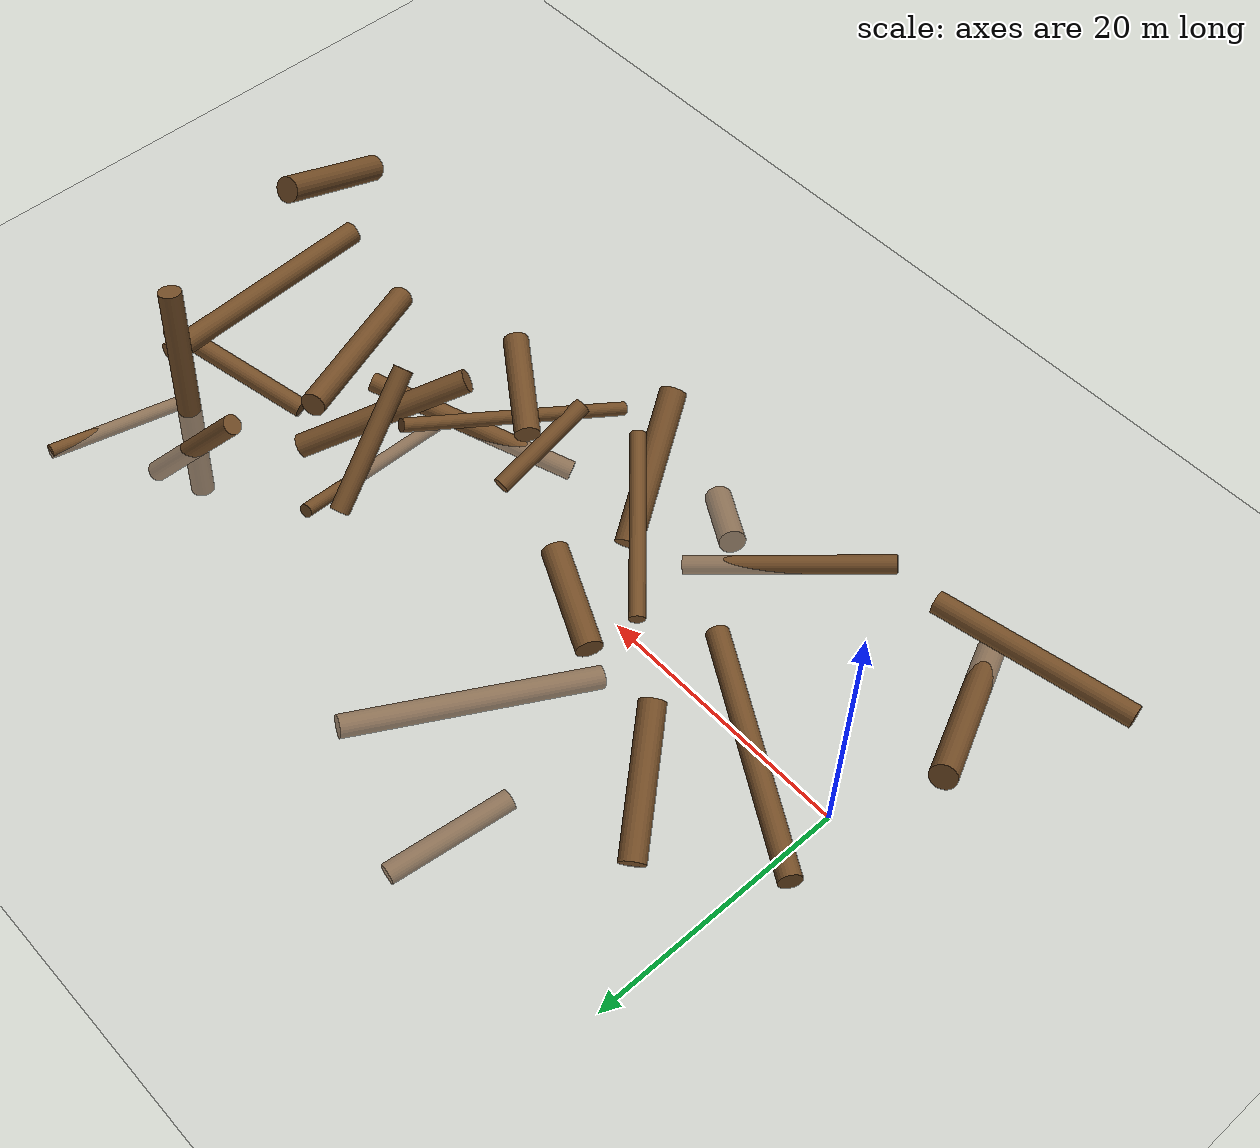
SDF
<sdf version='1.7'>
            <world name='default'>
                <light name='sun' type='directional'>
                <cast_shadows>1</cast_shadows>
                <pose>0 0 10 0 -0 0</pose>
                <diffuse>0.8 0.8 0.8 1</diffuse>
                <specular>0.2 0.2 0.2 1</specular>
                <attenuation>
                    <range>1000</range>
                    <constant>0.9</constant>
                    <linear>0.01</linear>
                    <quadratic>0.001</quadratic>
                </attenuation>
                <direction>-0.5 0.1 -0.9</direction>
                <spot>
                    <inner_angle>0</inner_angle>
                    <outer_angle>0</outer_angle>
                    <falloff>0</falloff>
                </spot>
                </light>
                <model name='ground_plane'>
                <static>1</static>
                <link name='link'>
                    <collision name='collision'>
                    <geometry>
                        <plane>
                        <normal>0 0 1</normal>
                        <size>100 100</size>
                        </plane>
                    </geometry>
                    <surface>
                        <contact>
                        <collide_bitmask>65535</collide_bitmask>
                        <ode/>
                        </contact>
                        <friction>
                        <ode>
                            <mu>100</mu>
                            <mu2>50</mu2>
                        </ode>
                        <torsional>
                            <ode/>
                        </torsional>
                        </friction>
                        <bounce/>
                    </surface>
                    <max_contacts>10</max_contacts>
                    </collision>
                    <visual name='visual'>
                    <cast_shadows>0</cast_shadows>
                    <geometry>
                        <plane>
                        <normal>0 0 1</normal>
                        <size>100 100</size>
                        </plane>
                    </geometry>
                    <material>
                        <script>
                        <uri>file://media/materials/scripts/gazebo.material</uri>
                        <name>Gazebo/Grey</name>
                        </script>
                    </material>
                    </visual>
                    <self_collide>0</self_collide>
                    <enable_wind>0</enable_wind>
                    <kinematic>0</kinematic>
                </link>
                </model>
                <gravity>0 0 -9.8</gravity>
                <magnetic_field>6e-06 2.3e-05 -4.2e-05</magnetic_field>
                <atmosphere type='adiabatic'/>
                <physics type='ode'>
                <max_step_size>0.001</max_step_size>
                <real_time_factor>1</real_time_factor>
                <real_time_update_rate>1000</real_time_update_rate>
                </physics>
                <scene>
                <ambient>0.4 0.4 0.4 1</ambient>
                <background>0.7 0.7 0.7 1</background>
                <shadows>1</shadows>
                </scene>
                <wind/>
                <spherical_coordinates>
                <surface_model>EARTH_WGS84</surface_model>
                <latitude_deg>0</latitude_deg>
                <longitude_deg>0</longitude_deg>
                <elevation>0</elevation>
                <heading_deg>0</heading_deg>
                </spherical_coordinates>
                <model name='cylinder_1'>
      <static>1</static>
      <link name='link'>
        <pose frame=''>0 0 0.1 0 -0 0</pose>
        <collision name='collision_trunk'>
          <pose frame=''>0 0 2 0 -0 0</pose>
          <geometry>
            <cylinder>
              <radius>0.9949792097028908</radius>
              <length>11.641683740963664</length>
            </cylinder>
          </geometry>
        </collision>
        <visual name='trunk'>
          <pose frame=''>0 0 2 0 -0 0</pose>
          <geometry>
            <cylinder>
              <radius>0.9949792097028908</radius>
              <length>11.641683740963664</length>
            </cylinder>
          </geometry>
          <material>
            <script>
              <uri>model://tree_simple/scripts</uri>
              <uri>model://tree_simple/materials/textures</uri>
              <name>TreeSimple/Trunk</name>
            </script>
          </material>
        </visual>
        <self_collide>0</self_collide>
        <kinematic>0</kinematic>
      </link>
      <pose frame=''>25.604518766579545 -7.498273661027049 2.893977495658426 30.2956192504788 68.5857228035242 72.54887266500606</pose>
    </model>
    <model name='cylinder_2'>
      <static>1</static>
      <link name='link'>
        <pose frame=''>0 0 0.1 0 -0 0</pose>
        <collision name='collision_trunk'>
          <pose frame=''>0 0 2 0 -0 0</pose>
          <geometry>
            <cylinder>
              <radius>0.9539094253623406</radius>
          <length>10.5698242177709</length>
            </cylinder>
          </geometry>
        </collision>
        <visual name='trunk'>
          <pose frame=''>0 0 2 0 -0 0</pose>
          <geometry>
            <cylinder>
              <radius>0.9539094253623406</radius>
          <length>10.5698242177709</length>
            </cylinder>
          </geometry>
          <material>
            <script>
              <uri>model://tree_simple/scripts</uri>
              <uri>model://tree_simple/materials/textures</uri>
              <name>TreeSimple/Trunk</name>
            </script>
          </material>
        </visual>
        <self_collide>0</self_collide>
        <kinematic>0</kinematic>
      </link>
      <pose frame=''>10.272900749555058 6.532500951908805 2.924238259122739 82.21227137330179 96.19448430527324 147.34591994827414</pose>
    </model>
    <model name='cylinder_3'>
      <static>1</static>
      <link name='link'>
        <pose frame=''>0 0 0.1 0 -0 0</pose>
        <collision name='collision_trunk'>
          <pose frame=''>0 0 2 0 -0 0</pose>
          <geometry>
            <cylinder>
              <radius>0.5022780386079325</radius>
          <length>18.14040667349965</length>
            </cylinder>
          </geometry>
        </collision>
        <visual name='trunk'>
          <pose frame=''>0 0 2 0 -0 0</pose>
          <geometry>
            <cylinder>
              <radius>0.5022780386079325</radius>
          <length>18.14040667349965</length>
            </cylinder>
          </geometry>
          <material>
            <script>
              <uri>model://tree_simple/scripts</uri>
              <uri>model://tree_simple/materials/textures</uri>
              <name>TreeSimple/Trunk</name>
            </script>
          </material>
        </visual>
        <self_collide>0</self_collide>
        <kinematic>0</kinematic>
      </link>
      <pose frame=''>36.183250200149345 -2.5495471554033458 5.756408641529976 62.16976166163011 115.11869376302371 35.10348327532475</pose>
    </model>
    <model name='cylinder_4'>
      <static>1</static>
      <link name='link'>
        <pose frame=''>0 0 0.1 0 -0 0</pose>
        <collision name='collision_trunk'>
          <pose frame=''>0 0 2 0 -0 0</pose>
          <geometry>
            <cylinder>
              <radius>0.5236101621346088</radius>
          <length>11.746474007422552</length>
            </cylinder>
          </geometry>
        </collision>
        <visual name='trunk'>
          <pose frame=''>0 0 2 0 -0 0</pose>
          <geometry>
            <cylinder>
              <radius>0.5236101621346088</radius>
          <length>11.746474007422552</length>
            </cylinder>
          </geometry>
          <material>
            <script>
              <uri>model://tree_simple/scripts</uri>
              <uri>model://tree_simple/materials/textures</uri>
              <name>TreeSimple/Trunk</name>
            </script>
          </material>
        </visual>
        <self_collide>0</self_collide>
        <kinematic>0</kinematic>
      </link>
      <pose frame=''>58.216129131185745 12.595107076086904 -1.1766883544689963 24.108655793565475 136.92886052222633 106.16761396367312</pose>
    </model>
    <model name='cylinder_5'>
      <static>1</static>
      <link name='link'>
        <pose frame=''>0 0 0.1 0 -0 0</pose>
        <collision name='collision_trunk'>
          <pose frame=''>0 0 2 0 -0 0</pose>
          <geometry>
            <cylinder>
              <radius>0.8424578188629119</radius>
          <length>15.052224311252628</length>
            </cylinder>
          </geometry>
        </collision>
        <visual name='trunk'>
          <pose frame=''>0 0 2 0 -0 0</pose>
          <geometry>
            <cylinder>
              <radius>0.8424578188629119</radius>
          <length>15.052224311252628</length>
            </cylinder>
          </geometry>
          <material>
            <script>
              <uri>model://tree_simple/scripts</uri>
              <uri>model://tree_simple/materials/textures</uri>
              <name>TreeSimple/Trunk</name>
            </script>
          </material>
        </visual>
        <self_collide>0</self_collide>
        <kinematic>0</kinematic>
      </link>
      <pose frame=''>0.6960789155220137 -17.599431248844244 1.9445413994926373 67.4998745479427 101.25631236823692 102.28123066990736</pose>
    </model>
    <model name='cylinder_6'>
      <static>1</static>
      <link name='link'>
        <pose frame=''>0 0 0.1 0 -0 0</pose>
        <collision name='collision_trunk'>
          <pose frame=''>0 0 2 0 -0 0</pose>
          <geometry>
            <cylinder>
              <radius>0.7655793297948693</radius>
          <length>9.626367270660639</length>
            </cylinder>
          </geometry>
        </collision>
        <visual name='trunk'>
          <pose frame=''>0 0 2 0 -0 0</pose>
          <geometry>
            <cylinder>
              <radius>0.7655793297948693</radius>
          <length>9.626367270660639</length>
            </cylinder>
          </geometry>
          <material>
            <script>
              <uri>model://tree_simple/scripts</uri>
              <uri>model://tree_simple/materials/textures</uri>
              <name>TreeSimple/Trunk</name>
            </script>
          </material>
        </visual>
        <self_collide>0</self_collide>
        <kinematic>0</kinematic>
      </link>
      <pose frame=''>17.647502752337857 19.589020362112407 -4.907838889347914 58.65824117107358 165.0621456649798 107.20414637798673</pose>
    </model>
    <model name='cylinder_7'>
      <static>1</static>
      <link name='link'>
        <pose frame=''>0 0 0.1 0 -0 0</pose>
        <collision name='collision_trunk'>
          <pose frame=''>0 0 2 0 -0 0</pose>
          <geometry>
            <cylinder>
              <radius>0.9973744936564692</radius>
          <length>5.285625468977769</length>
            </cylinder>
          </geometry>
        </collision>
        <visual name='trunk'>
          <pose frame=''>0 0 2 0 -0 0</pose>
          <geometry>
            <cylinder>
              <radius>0.9973744936564692</radius>
          <length>5.285625468977769</length>
            </cylinder>
          </geometry>
          <material>
            <script>
              <uri>model://tree_simple/scripts</uri>
              <uri>model://tree_simple/materials/textures</uri>
              <name>TreeSimple/Trunk</name>
            </script>
          </material>
        </visual>
        <self_collide>0</self_collide>
        <kinematic>0</kinematic>
      </link>
      <pose frame=''>24.95278465674628 -14.947580019691461 -3.5176148444413737 123.57292166760996 146.55554943919105 69.62632358346046</pose>
    </model>
    <model name='cylinder_8'>
      <static>1</static>
      <link name='link'>
        <pose frame=''>0 0 0.1 0 -0 0</pose>
        <collision name='collision_trunk'>
          <pose frame=''>0 0 2 0 -0 0</pose>
          <geometry>
            <cylinder>
              <radius>0.9807413372204243</radius>
          <length>10.289356327006619</length>
            </cylinder>
          </geometry>
        </collision>
        <visual name='trunk'>
          <pose frame=''>0 0 2 0 -0 0</pose>
          <geometry>
            <cylinder>
              <radius>0.9807413372204243</radius>
          <length>10.289356327006619</length>
            </cylinder>
          </geometry>
          <material>
            <script>
              <uri>model://tree_simple/scripts</uri>
              <uri>model://tree_simple/materials/textures</uri>
              <name>TreeSimple/Trunk</name>
            </script>
          </material>
        </visual>
        <self_collide>0</self_collide>
        <kinematic>0</kinematic>
      </link>
      <pose frame=''>59.830866118157935 -8.739225879501857 8.80374781005478 9.927949596230834 129.84193420851003 170.84769927519864</pose>
    </model>
    <model name='cylinder_9'>
      <static>1</static>
      <link name='link'>
        <pose frame=''>0 0 0.1 0 -0 0</pose>
        <collision name='collision_trunk'>
          <pose frame=''>0 0 2 0 -0 0</pose>
          <geometry>
            <cylinder>
              <radius>0.8385290083985348</radius>
          <length>19.325744821213682</length>
            </cylinder>
          </geometry>
        </collision>
        <visual name='trunk'>
          <pose frame=''>0 0 2 0 -0 0</pose>
          <geometry>
            <cylinder>
              <radius>0.8385290083985348</radius>
          <length>19.325744821213682</length>
            </cylinder>
          </geometry>
          <material>
            <script>
              <uri>model://tree_simple/scripts</uri>
              <uri>model://tree_simple/materials/textures</uri>
              <name>TreeSimple/Trunk</name>
            </script>
          </material>
        </visual>
        <self_collide>0</self_collide>
        <kinematic>0</kinematic>
      </link>
      <pose frame=''>4.4559663410579216 1.9202602952986005 1.4069158623178515 17.25027301192005 63.31714565500593 23.007982231054214</pose>
    </model>
    <model name='cylinder_10'>
      <static>1</static>
      <link name='link'>
        <pose frame=''>0 0 0.1 0 -0 0</pose>
        <collision name='collision_trunk'>
          <pose frame=''>0 0 2 0 -0 0</pose>
          <geometry>
            <cylinder>
              <radius>0.7387145634336486</radius>
          <length>10.891351465770423</length>
            </cylinder>
          </geometry>
        </collision>
        <visual name='trunk'>
          <pose frame=''>0 0 2 0 -0 0</pose>
          <geometry>
            <cylinder>
              <radius>0.7387145634336486</radius>
          <length>10.891351465770423</length>
            </cylinder>
          </geometry>
          <material>
            <script>
              <uri>model://tree_simple/scripts</uri>
              <uri>model://tree_simple/materials/textures</uri>
              <name>TreeSimple/Trunk</name>
            </script>
          </material>
        </visual>
        <self_collide>0</self_collide>
        <kinematic>0</kinematic>
      </link>
      <pose frame=''>40.47481374896363 3.4618519466969353 7.314728446472174 169.2776127866053 60.57037580341769 175.124938483209</pose>
    </model>
    <model name='cylinder_11'>
      <static>1</static>
      <link name='link'>
        <pose frame=''>0 0 0.1 0 -0 0</pose>
        <collision name='collision_trunk'>
          <pose frame=''>0 0 2 0 -0 0</pose>
          <geometry>
            <cylinder>
              <radius>0.8499053721328556</radius>
          <length>19.178535854425615</length>
            </cylinder>
          </geometry>
        </collision>
        <visual name='trunk'>
          <pose frame=''>0 0 2 0 -0 0</pose>
          <geometry>
            <cylinder>
              <radius>0.8499053721328556</radius>
          <length>19.178535854425615</length>
            </cylinder>
          </geometry>
          <material>
            <script>
              <uri>model://tree_simple/scripts</uri>
              <uri>model://tree_simple/materials/textures</uri>
              <name>TreeSimple/Trunk</name>
            </script>
          </material>
        </visual>
        <self_collide>0</self_collide>
        <kinematic>0</kinematic>
      </link>
      <pose frame=''>23.457970700320377 7.699073949994649 -4.866771016510322 98.5240585335588 27.037769562071155 105.97900386720261</pose>
    </model>
        <model name='cylinder_12'>
      <static>1</static>
      <link name='link'>
        <pose frame=''>0 0 0.1 0 -0 0</pose>
        <collision name='collision_trunk'>
          <pose frame=''>0 0 2 0 -0 0</pose>
          <geometry>
            <cylinder>
              <radius>0.8651113946939074</radius>
          <length>13.382723422348294</length>
            </cylinder>
          </geometry>
        </collision>
        <visual name='trunk'>
          <pose frame=''>0 0 2 0 -0 0</pose>
          <geometry>
            <cylinder>
              <radius>0.8651113946939074</radius>
          <length>13.382723422348294</length>
            </cylinder>
          </geometry>
          <material>
            <script>
              <uri>model://tree_simple/scripts</uri>
              <uri>model://tree_simple/materials/textures</uri>
              <name>TreeSimple/Trunk</name>
            </script>
          </material>
        </visual>
        <self_collide>0</self_collide>
        <kinematic>0</kinematic>
      </link>
      <pose frame=''>43.034506147620334 4.117093309072114 4.395978260383357 155.02995504193802 40.370179531376166 159.37385026734538</pose>
    </model>
    <model name='cylinder_13'>
      <static>1</static>
      <link name='link'>
        <pose frame=''>0 0 0.1 0 -0 0</pose>
        <collision name='collision_trunk'>
          <pose frame=''>0 0 2 0 -0 0</pose>
          <geometry>
            <cylinder>
              <radius>0.9143744878599476</radius>
          <length>14.051447253055754</length>
            </cylinder>
          </geometry>
        </collision>
        <visual name='trunk'>
          <pose frame=''>0 0 2 0 -0 0</pose>
          <geometry>
            <cylinder>
              <radius>0.9143744878599476</radius>
          <length>14.051447253055754</length>
            </cylinder>
          </geometry>
          <material>
            <script>
              <uri>model://tree_simple/scripts</uri>
              <uri>model://tree_simple/materials/textures</uri>
              <name>TreeSimple/Trunk</name>
            </script>
          </material>
        </visual>
        <self_collide>0</self_collide>
        <kinematic>0</kinematic>
      </link>
      <pose frame=''>47.25238226852442 -0.7895319857128555 6.909430774225193 121.989646619501 14.355901155151958 111.43262764385646</pose>
    </model>
    <model name='cylinder_14'>
      <static>1</static>
      <link name='link'>
        <pose frame=''>0 0 0.1 0 -0 0</pose>
        <collision name='collision_trunk'>
          <pose frame=''>0 0 2 0 -0 0</pose>
          <geometry>
            <cylinder>
              <radius>0.6703522302110756</radius>
          <length>15.036196823692865</length>
            </cylinder>
          </geometry>
        </collision>
        <visual name='trunk'>
          <pose frame=''>0 0 2 0 -0 0</pose>
          <geometry>
            <cylinder>
              <radius>0.6703522302110756</radius>
          <length>15.036196823692865</length>
            </cylinder>
          </geometry>
          <material>
            <script>
              <uri>model://tree_simple/scripts</uri>
              <uri>model://tree_simple/materials/textures</uri>
              <name>TreeSimple/Trunk</name>
            </script>
          </material>
        </visual>
        <self_collide>0</self_collide>
        <kinematic>0</kinematic>
      </link>
      <pose frame=''>14.241259097417904 -13.856084765308214 0.4223472266636854 10.815514411890693 132.1723808972628 87.06756612023233</pose>
    </model>
    <model name='cylinder_15'>
      <static>1</static>
      <link name='link'>
        <pose frame=''>0 0 0.1 0 -0 0</pose>
        <collision name='collision_trunk'>
          <pose frame=''>0 0 2 0 -0 0</pose>
          <geometry>
            <cylinder>
              <radius>0.8672653321040114</radius>
          <length>17.990191913556508</length>
            </cylinder>
          </geometry>
        </collision>
        <visual name='trunk'>
          <pose frame=''>0 0 2 0 -0 0</pose>
          <geometry>
            <cylinder>
              <radius>0.8672653321040114</radius>
          <length>17.990191913556508</length>
            </cylinder>
          </geometry>
          <material>
            <script>
              <uri>model://tree_simple/scripts</uri>
              <uri>model://tree_simple/materials/textures</uri>
              <name>TreeSimple/Trunk</name>
            </script>
          </material>
        </visual>
        <self_collide>0</self_collide>
        <kinematic>0</kinematic>
      </link>
      <pose frame=''>58.59739262960322 -1.1029257627193587 3.8284881104550923 4.719060165418387 38.13509626725744 25.19885744500247</pose>
    </model>
    <model name='cylinder_71'>
  <static>1</static>
  <link name='link'>
    <pose frame=''>0 0 0.1 0 -0 0</pose>
    <collision name='collision_trunk'>
      <pose frame=''>0 0 2 0 -0 0</pose>
      <geometry>
        <cylinder>
          <radius>0.9767909609</radius>
          <length>15.3672735382</length>
        </cylinder>
      </geometry>
    </collision>
    <visual name='trunk'>
      <pose frame=''>0 0 2 0 -0 0</pose>
      <geometry>
        <cylinder>
          <radius>0.9767909609</radius>
          <length>15.3672735382</length>
        </cylinder>
      </geometry>
      <material>
        <script>
          <uri>model://tree_simple/scripts</uri>
          <uri>model://tree_simple/materials/textures</uri>
          <name>TreeSimple/Trunk</name>
        </script>
      </material>
    </visual>
    <self_collide>0</self_collide>
    <kinematic>0</kinematic>
  </link>
  <pose frame=''>0.0612181679 -14.1632458787 -0.0827348494 98.5812313482 104.01069353 88.5371306514</pose>
</model>

<model name='cylinder_72'>
  <static>1</static>
  <link name='link'>
    <pose frame=''>0 0 0.1 0 -0 0</pose>
    <collision name='collision_trunk'>
      <pose frame=''>0 0 2 0 -0 0</pose>
      <geometry>
        <cylinder>
          <radius>0.7244019289</radius>
          <length>12.0063977967</length>
        </cylinder>
      </geometry>
    </collision>
    <visual name='trunk'>
      <pose frame=''>0 0 2 0 -0 0</pose>
      <geometry>
        <cylinder>
          <radius>0.7244019289</radius>
          <length>12.0063977967</length>
        </cylinder>
      </geometry>
      <material>
        <script>
          <uri>model://tree_simple/scripts</uri>
          <uri>model://tree_simple/materials/textures</uri>
          <name>TreeSimple/Trunk</name>
        </script>
      </material>
    </visual>
    <self_collide>0</self_collide>
    <kinematic>0</kinematic>
  </link>
  <pose frame=''>53.5079553898 5.5507166201 1.2025729482 334.174668832 206.3479305308 335.242690797</pose>
</model>

<model name='cylinder_73'>
  <static>1</static>
  <link name='link'>
    <pose frame=''>0 0 0.1 0 -0 0</pose>
    <collision name='collision_trunk'>
      <pose frame=''>0 0 2 0 -0 0</pose>
      <geometry>
        <cylinder>
          <radius>0.7210085442</radius>
          <length>16.161088603</length>
        </cylinder>
      </geometry>
    </collision>
    <visual name='trunk'>
      <pose frame=''>0 0 2 0 -0 0</pose>
      <geometry>
        <cylinder>
          <radius>0.7210085442</radius>
          <length>16.161088603</length>
        </cylinder>
      </geometry>
      <material>
        <script>
          <uri>model://tree_simple/scripts</uri>
          <uri>model://tree_simple/materials/textures</uri>
          <name>TreeSimple/Trunk</name>
        </script>
      </material>
    </visual>
    <self_collide>0</self_collide>
    <kinematic>0</kinematic>
  </link>
  <pose frame=''>38.4190022733 -4.9729963076 -0.2576577272 313.4035427017 5.0388121457 4.4122786096</pose>
</model>

<model name='cylinder_74'>
  <static>1</static>
  <link name='link'>
    <pose frame=''>0 0 0.1 0 -0 0</pose>
    <collision name='collision_trunk'>
      <pose frame=''>0 0 2 0 -0 0</pose>
      <geometry>
        <cylinder>
          <radius>0.5097656462</radius>
          <length>15.6441621807</length>
        </cylinder>
      </geometry>
    </collision>
    <visual name='trunk'>
      <pose frame=''>0 0 2 0 -0 0</pose>
      <geometry>
        <cylinder>
          <radius>0.5097656462</radius>
          <length>15.6441621807</length>
        </cylinder>
      </geometry>
      <material>
        <script>
          <uri>model://tree_simple/scripts</uri>
          <uri>model://tree_simple/materials/textures</uri>
          <name>TreeSimple/Trunk</name>
        </script>
      </material>
    </visual>
    <self_collide>0</self_collide>
    <kinematic>0</kinematic>
  </link>
  <pose frame=''>42.9269662324 4.8802935496 -1.02569396 297.9248548266 17.650667148 175.1448903408</pose>
</model>

<model name='cylinder_75'>
  <static>1</static>
  <link name='link'>
    <pose frame=''>0 0 0.1 0 -0 0</pose>
    <collision name='collision_trunk'>
      <pose frame=''>0 0 2 0 -0 0</pose>
      <geometry>
        <cylinder>
          <radius>0.9316285032</radius>
          <length>7.9087453411</length>
        </cylinder>
      </geometry>
    </collision>
    <visual name='trunk'>
      <pose frame=''>0 0 2 0 -0 0</pose>
      <geometry>
        <cylinder>
          <radius>0.9316285032</radius>
          <length>7.9087453411</length>
        </cylinder>
      </geometry>
      <material>
        <script>
          <uri>model://tree_simple/scripts</uri>
          <uri>model://tree_simple/materials/textures</uri>
          <name>TreeSimple/Trunk</name>
        </script>
      </material>
    </visual>
    <self_collide>0</self_collide>
    <kinematic>0</kinematic>
  </link>
  <pose frame=''>34.5323813629 -4.3590631138 6.5170979098 291.9113089478 130.1983591809 238.4092456907</pose>
</model>

<model name='cylinder_76'>
  <static>1</static>
  <link name='link'>
    <pose frame=''>0 0 0.1 0 -0 0</pose>
    <collision name='collision_trunk'>
      <pose frame=''>0 0 2 0 -0 0</pose>
      <geometry>
        <cylinder>
          <radius>0.6581654949</radius>
          <length>8.390753155</length>
        </cylinder>
      </geometry>
    </collision>
    <visual name='trunk'>
      <pose frame=''>0 0 2 0 -0 0</pose>
      <geometry>
        <cylinder>
          <radius>0.6581654949</radius>
          <length>8.390753155</length>
        </cylinder>
      </geometry>
      <material>
        <script>
          <uri>model://tree_simple/scripts</uri>
          <uri>model://tree_simple/materials/textures</uri>
          <name>TreeSimple/Trunk</name>
        </script>
      </material>
    </visual>
    <self_collide>0</self_collide>
    <kinematic>0</kinematic>
  </link>
  <pose frame=''>33.761274431 -7.1959554043 3.4430116377 78.9209297002 328.0227020835 55.4194039213</pose>
</model>

<model name='cylinder_77'>
  <static>1</static>
  <link name='link'>
    <pose frame=''>0 0 0.1 0 -0 0</pose>
    <collision name='collision_trunk'>
      <pose frame=''>0 0 2 0 -0 0</pose>
      <geometry>
        <cylinder>
          <radius>0.9832113502</radius>
          <length>8.0270119398</length>
        </cylinder>
      </geometry>
    </collision>
    <visual name='trunk'>
      <pose frame=''>0 0 2 0 -0 0</pose>
      <geometry>
        <cylinder>
          <radius>0.9832113502</radius>
          <length>8.0270119398</length>
        </cylinder>
      </geometry>
      <material>
        <script>
          <uri>model://tree_simple/scripts</uri>
          <uri>model://tree_simple/materials/textures</uri>
          <name>TreeSimple/Trunk</name>
        </script>
      </material>
    </visual>
    <self_collide>0</self_collide>
    <kinematic>0</kinematic>
  </link>
  <pose frame=''>20.4025530061 3.033589132 2.6291799798 173.8325387915 196.5594958644 179.6939361592</pose>
</model>

<model name='cylinder_78'>
  <static>1</static>
  <link name='link'>
    <pose frame=''>0 0 0.1 0 -0 0</pose>
    <collision name='collision_trunk'>
      <pose frame=''>0 0 2 0 -0 0</pose>
      <geometry>
        <cylinder>
          <radius>0.5807397818</radius>
          <length>14.1562128707</length>
        </cylinder>
      </geometry>
    </collision>
    <visual name='trunk'>
      <pose frame=''>0 0 2 0 -0 0</pose>
      <geometry>
        <cylinder>
          <radius>0.5807397818</radius>
          <length>14.1562128707</length>
        </cylinder>
      </geometry>
      <material>
        <script>
          <uri>model://tree_simple/scripts</uri>
          <uri>model://tree_simple/materials/textures</uri>
          <name>TreeSimple/Trunk</name>
        </script>
      </material>
    </visual>
    <self_collide>0</self_collide>
    <kinematic>0</kinematic>
  </link>
  <pose frame=''>24.1070680576 -5.5074166767 5.7274404519 17.0686788619 263.3482314836 95.1780311329</pose>
</model>

<model name='cylinder_79'>
  <static>1</static>
  <link name='link'>
    <pose frame=''>0 0 0.1 0 -0 0</pose>
    <collision name='collision_trunk'>
      <pose frame=''>0 0 2 0 -0 0</pose>
      <geometry>
        <cylinder>
          <radius>0.7712581007</radius>
          <length>10.7159289329</length>
        </cylinder>
      </geometry>
    </collision>
    <visual name='trunk'>
      <pose frame=''>0 0 2 0 -0 0</pose>
      <geometry>
        <cylinder>
          <radius>0.7712581007</radius>
          <length>10.7159289329</length>
        </cylinder>
      </geometry>
      <material>
        <script>
          <uri>model://tree_simple/scripts</uri>
          <uri>model://tree_simple/materials/textures</uri>
          <name>TreeSimple/Trunk</name>
        </script>
      </material>
    </visual>
    <self_collide>0</self_collide>
    <kinematic>0</kinematic>
  </link>
  <pose frame=''>51.1609106522 11.7034818899 1.4879955589 286.2531875252 145.1686072582 142.4755501892</pose>
</model>

<model name='cylinder_80'>
  <static>1</static>
  <link name='link'>
    <pose frame=''>0 0 0.1 0 -0 0</pose>
    <collision name='collision_trunk'>
      <pose frame=''>0 0 2 0 -0 0</pose>
      <geometry>
        <cylinder>
          <radius>0.8768057233</radius>
          <length>17.865505453</length>
        </cylinder>
      </geometry>
    </collision>
    <visual name='trunk'>
      <pose frame=''>0 0 2 0 -0 0</pose>
      <geometry>
        <cylinder>
          <radius>0.8768057233</radius>
          <length>17.865505453</length>
        </cylinder>
      </geometry>
      <material>
        <script>
          <uri>model://tree_simple/scripts</uri>
          <uri>model://tree_simple/materials/textures</uri>
          <name>TreeSimple/Trunk</name>
        </script>
      </material>
    </visual>
    <self_collide>0</self_collide>
    <kinematic>0</kinematic>
  </link>
  <pose frame=''>56.4313428108 9.9497334452 3.2478182318 257.4248208741 241.7609319549 7.8606769012</pose>
</model>
            </world>
            </sdf>
